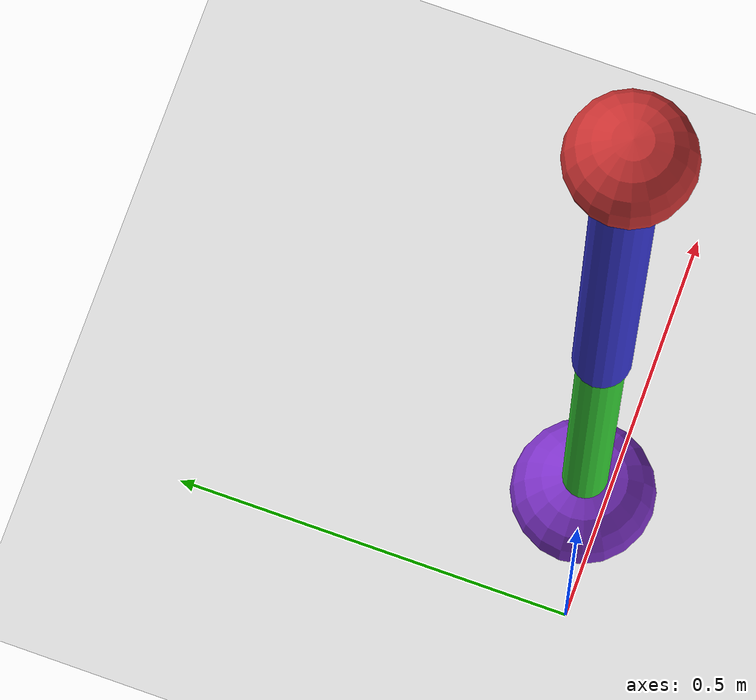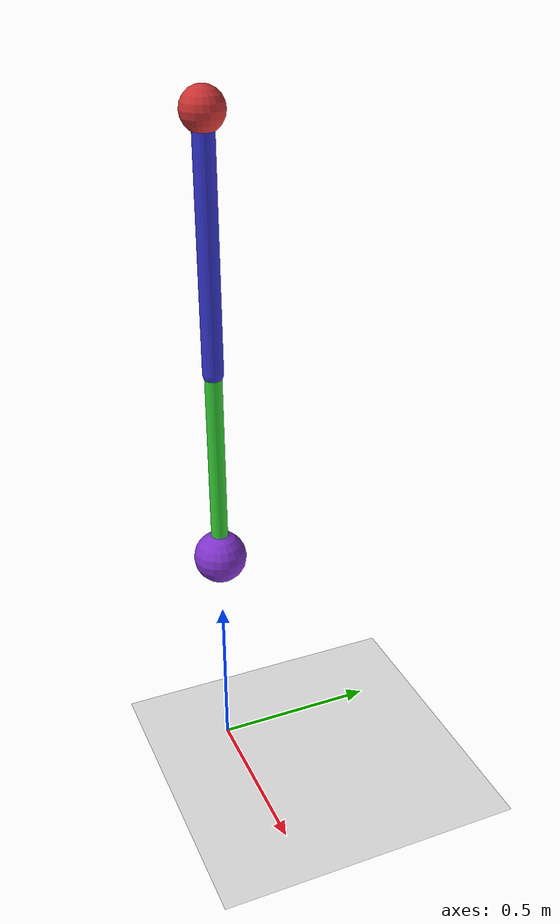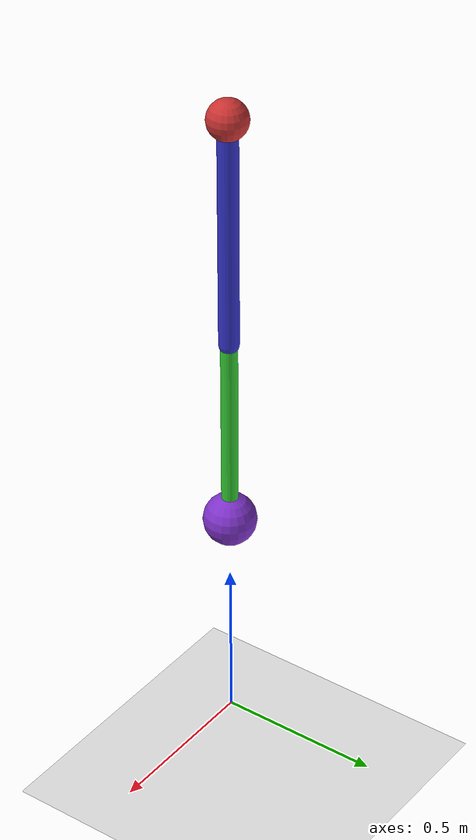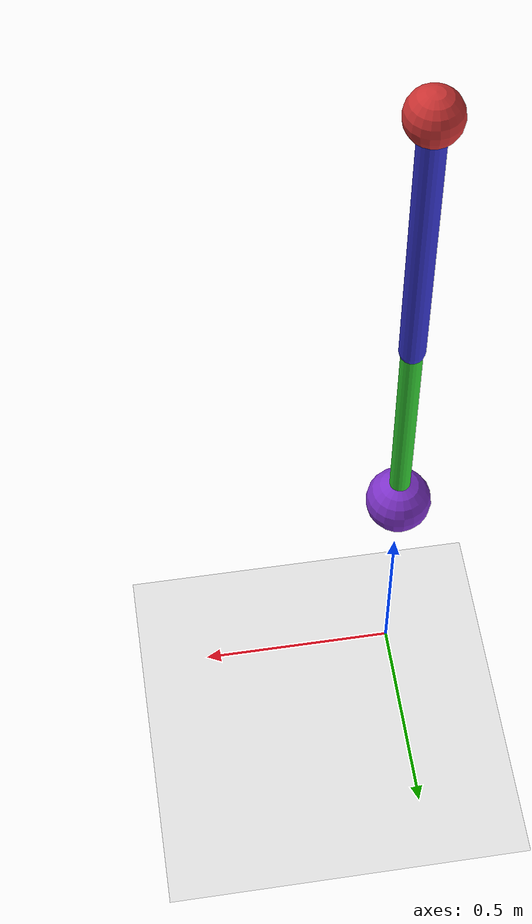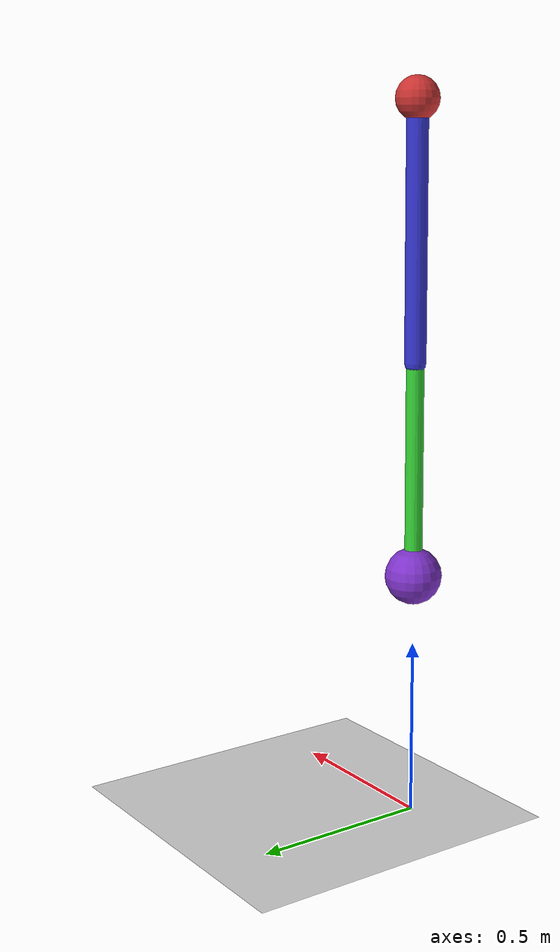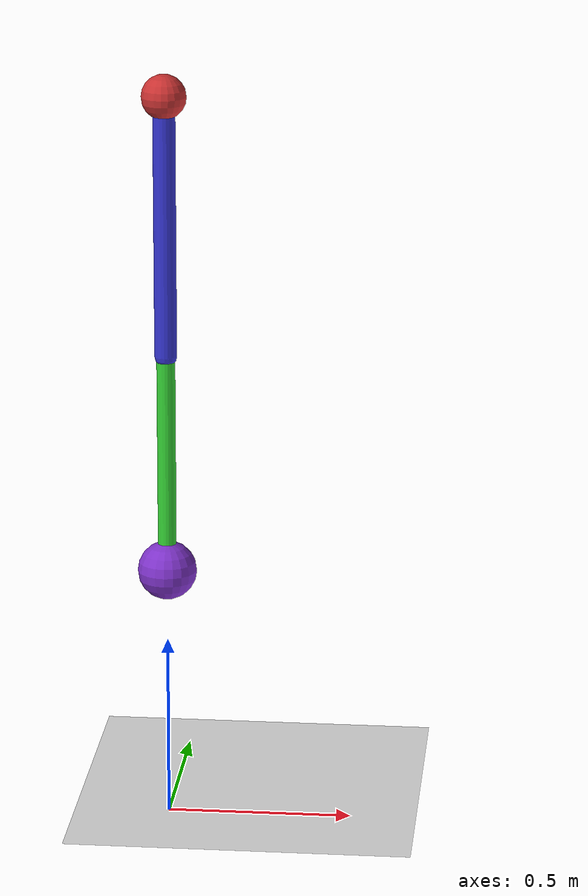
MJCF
<mujoco model="double_pendulum">
    <option timestep="0.01" integrator="RK4">
        <flag warmstart="enable" energy="enable" contact="enable" />
    </option>

    <asset>
        <material name="red" rgba="0.8 0.2 0.2 1" />
        <material name="blue" rgba="0.2 0.2 0.8 1" />
        <material name="green" rgba="0.2 0.8 0.2 1" />
        <material name="purple" rgba="0.5 0.2 0.8 1" />
        <material name="floor" rgba="0.9 0.9 0.9 1" specular="0.1" />
    </asset>

    <worldbody>
        <!-- Floor -->
        <geom name="floor" type="plane" size="10 10 0.1" material="floor" />

        <!-- Light source -->
        <light directional="true" pos="0 0 5" dir="0 0 -1" />
        <light directional="true" pos="0 5 2" dir="0 -1 -0.5" />

        <!-- Fixed base for pendulum -->
        <body name="base" pos="0 0 2">
            <geom name="base_geom" type="sphere" size="0.06" material="red" />

            <!-- First pendulum segment -->
            <body name="upper_arm" pos="0 0 0">
                <joint name="shoulder" type="hinge" axis="0 1 0" damping="0.05" />
                <geom name="upper_arm_geom" type="capsule" fromto="0 0 0 0 0 -0.7" size="0.03" material="blue" />

                <!-- Second pendulum segment -->
                <body name="lower_arm" pos="0 0 -0.7">
                    <joint name="elbow" type="hinge" axis="0 1 0" damping="0.05" />
                    <geom name="lower_arm_geom" type="capsule" fromto="0 0 0 0 0 -0.6" size="0.025" material="green" />
                    <geom name="end_mass" type="sphere" pos="0 0 -0.6" size="0.08" material="purple" />
                </body>
            </body>
        </body>
    </worldbody>

    <keyframe>
        <!-- Start configuration with both arms at slight angles -->
        <key name="start" qpos="0.3 0.7" />
    </keyframe>
</mujoco>
